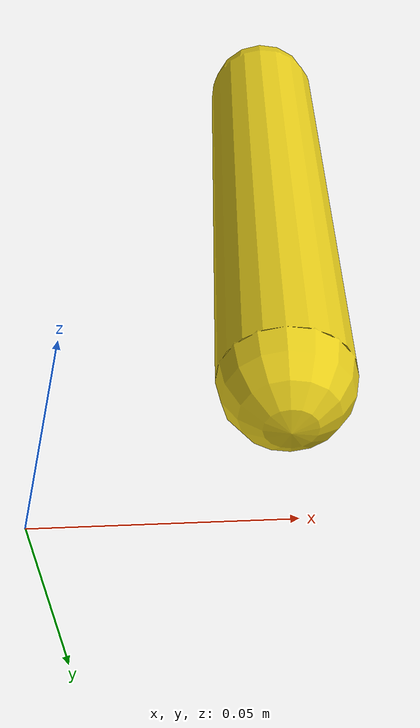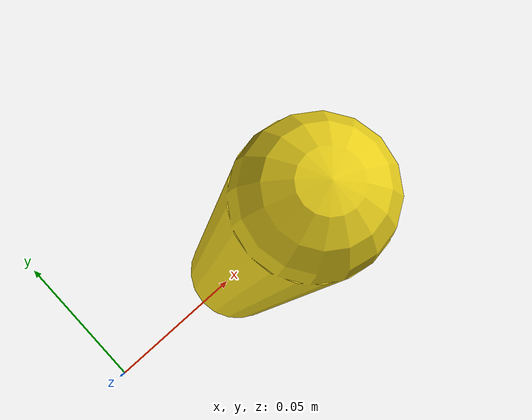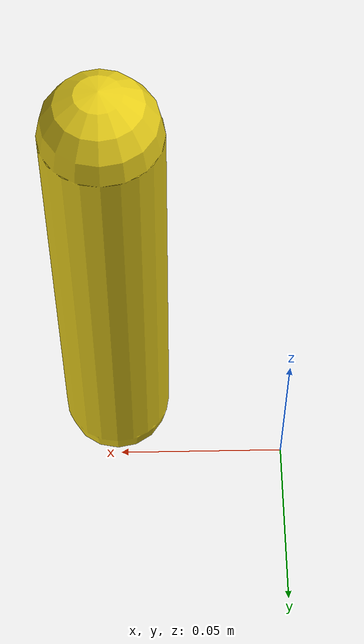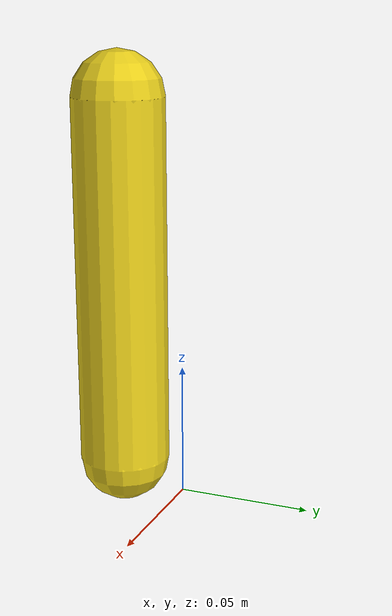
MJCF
<mujoco>
  <!-- Capsule (like banana: 12cm length, 3cm diameter) -->
  <worldbody>
    <body name="object" pos="0.05 0 0.095">
      <freejoint name="object_joint"/>
      <inertial pos="0 0 0" mass="0.12" diaginertia="1.5e-4 1.5e-4 3e-5"/>
      <geom name="object_geom" type="capsule" size="0.015 0.06"
            rgba="0.9 0.8 0.1 1" contype="1" conaffinity="1"
            friction="1 0.5 0.01"/>
    </body>
  </worldbody>
</mujoco>
